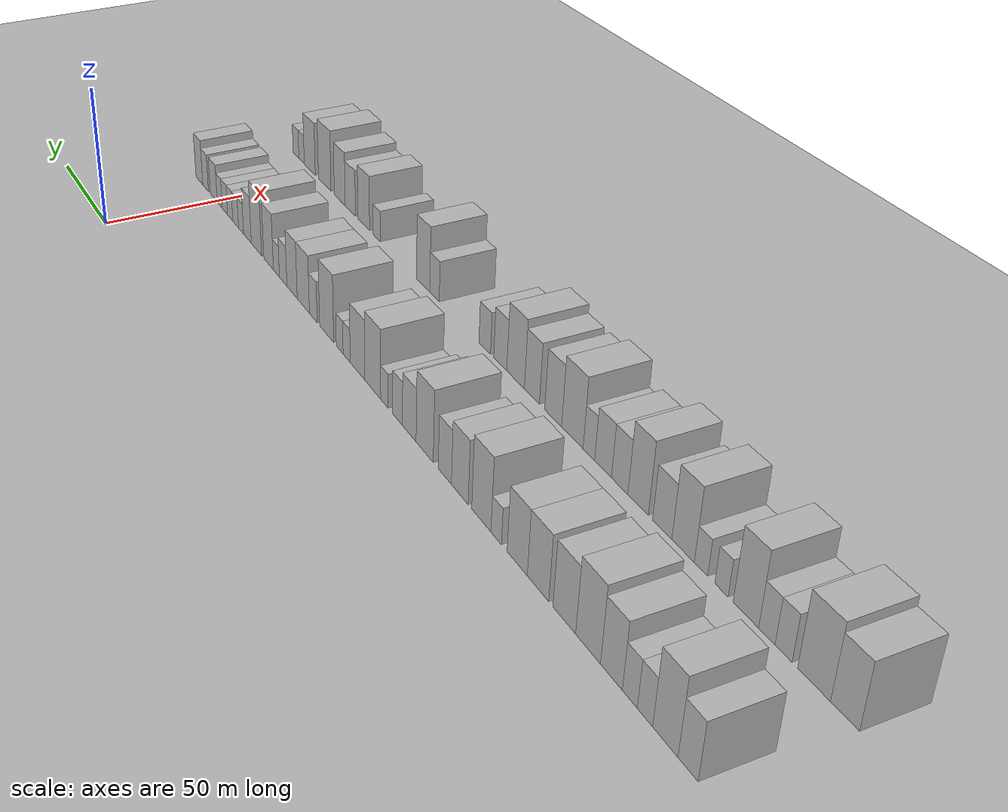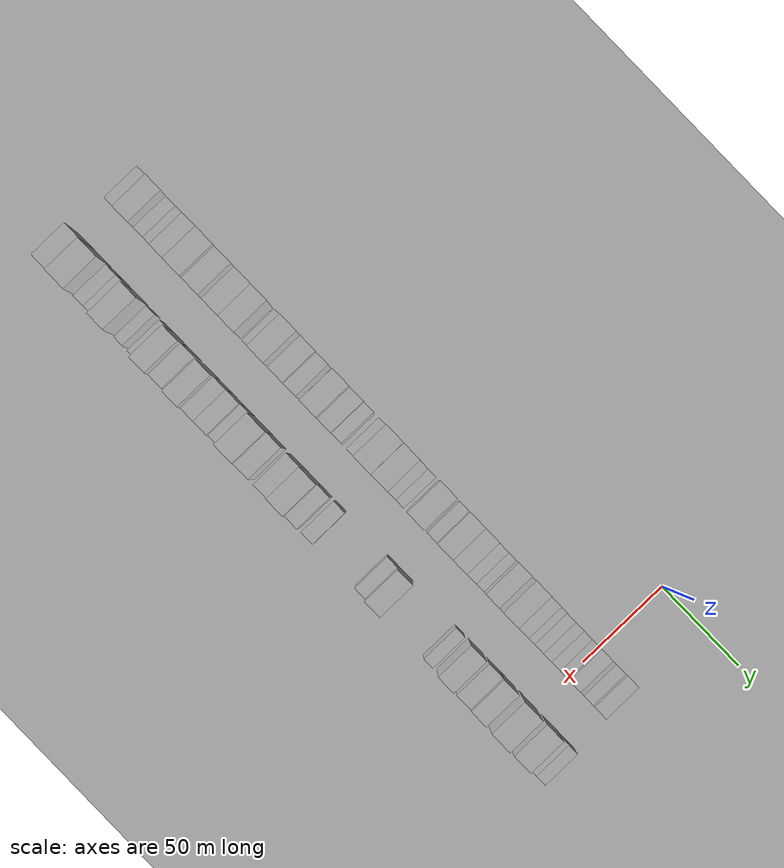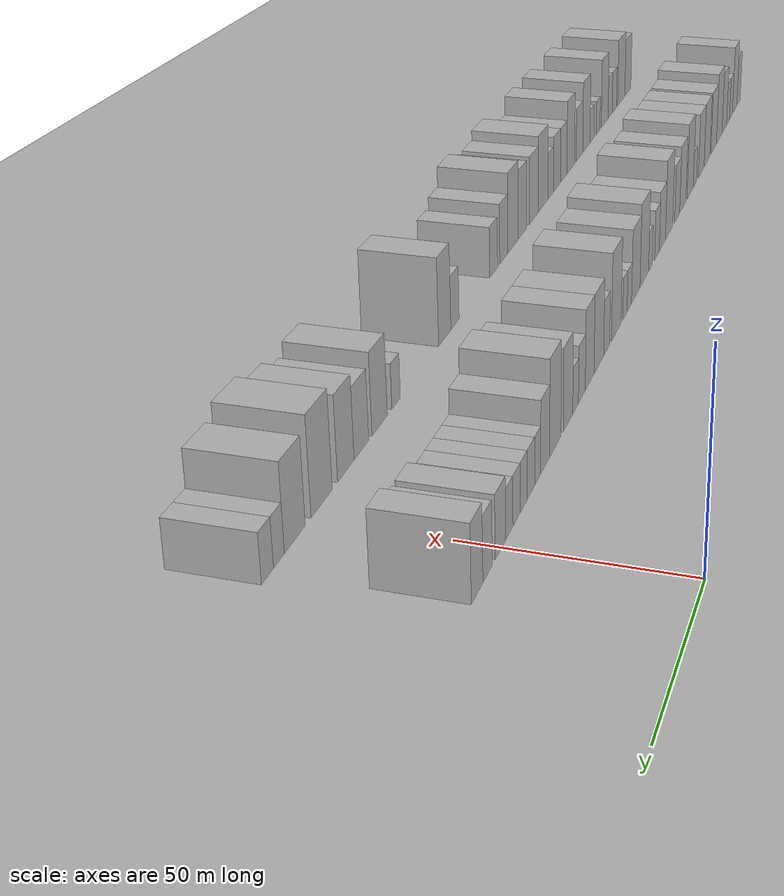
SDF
<sdf version="1.6">
 <world name="default">
  <include><name>ground_plane_1</name><uri>model://HANNAS_ground_plane</uri></include>
  <include>
   <name>ground_plane_2</name>
   <uri>model://HANNAS_ground_plane</uri>
   <pose>100 0 0  0 0 0</pose>
  </include>
  <model name="building_1">
   <static>1</static>
   <pose>50.0000 -293.2844 0 0.000000 0.000000 0.000000</pose>
   <link name="link">
    <pose>0 0 9.00 0 0 0</pose>
    <collision name="collision"><geometry><box><size>20.0000 7.4312 18.0000</size></box></geometry></collision>
    <visual name="visual">
     <cast_shadows>0</cast_shadows>
     <geometry><box><size>20.0000 7.4312 18.0000</size></box></geometry>
     <material>
      <script>
       <uri>model://HANNAS_wall/materials/scripts</uri>
       <uri>model://HANNAS_wall/materials/textures</uri>
       <name>vrc/HANNAS_wall</name>
      </script>
     </material>
    </visual>
   </link>
  </model>
  <model name="building_2">
   <static>1</static>
   <pose>50.0000 -284.7082 0 0.000000 0.000000 0.000000</pose>
   <link name="link">
    <pose>0 0 12.00 0 0 0</pose>
    <collision name="collision"><geometry><box><size>20.0000 9.7213 24.0000</size></box></geometry></collision>
    <visual name="visual">
     <cast_shadows>0</cast_shadows>
     <geometry><box><size>20.0000 9.7213 24.0000</size></box></geometry>
     <material>
      <script>
       <uri>model://HANNAS_wall/materials/scripts</uri>
       <uri>model://HANNAS_wall/materials/textures</uri>
       <name>vrc/HANNAS_wall</name>
      </script>
     </material>
    </visual>
   </link>
  </model>
  <model name="building_3">
   <static>1</static>
   <pose>50.0000 -276.7827 0 0.000000 0.000000 0.000000</pose>
   <link name="link">
    <pose>0 0 7.50 0 0 0</pose>
    <collision name="collision"><geometry><box><size>20.0000 6.1296 15.0000</size></box></geometry></collision>
    <visual name="visual">
     <cast_shadows>0</cast_shadows>
     <geometry><box><size>20.0000 6.1296 15.0000</size></box></geometry>
     <material>
      <script>
       <uri>model://HANNAS_wall/materials/scripts</uri>
       <uri>model://HANNAS_wall/materials/textures</uri>
       <name>vrc/HANNAS_wall</name>
      </script>
     </material>
    </visual>
   </link>
  </model>
  <model name="building_4">
   <static>1</static>
   <pose>50.0000 -270.6849 0 0.000000 0.000000 0.000000</pose>
   <link name="link">
    <pose>0 0 7.50 0 0 0</pose>
    <collision name="collision"><geometry><box><size>20.0000 6.0661 15.0000</size></box></geometry></collision>
    <visual name="visual">
     <cast_shadows>0</cast_shadows>
     <geometry><box><size>20.0000 6.0661 15.0000</size></box></geometry>
     <material>
      <script>
       <uri>model://HANNAS_wall/materials/scripts</uri>
       <uri>model://HANNAS_wall/materials/textures</uri>
       <name>vrc/HANNAS_wall</name>
      </script>
     </material>
    </visual>
   </link>
  </model>
  <model name="building_5">
   <static>1</static>
   <pose>50.0000 -263.0242 0 0.000000 0.000000 0.000000</pose>
   <link name="link">
    <pose>0 0 10.50 0 0 0</pose>
    <collision name="collision"><geometry><box><size>20.0000 9.2553 21.0000</size></box></geometry></collision>
    <visual name="visual">
     <cast_shadows>0</cast_shadows>
     <geometry><box><size>20.0000 9.2553 21.0000</size></box></geometry>
     <material>
      <script>
       <uri>model://HANNAS_wall/materials/scripts</uri>
       <uri>model://HANNAS_wall/materials/textures</uri>
       <name>vrc/HANNAS_wall</name>
      </script>
     </material>
    </visual>
   </link>
  </model>
  <model name="building_6">
   <static>1</static>
   <pose>50.0000 -252.9215 0 0.000000 0.000000 0.000000</pose>
   <link name="link">
    <pose>0 0 12.00 0 0 0</pose>
    <collision name="collision"><geometry><box><size>20.0000 10.9500 24.0000</size></box></geometry></collision>
    <visual name="visual">
     <cast_shadows>0</cast_shadows>
     <geometry><box><size>20.0000 10.9500 24.0000</size></box></geometry>
     <material>
      <script>
       <uri>model://HANNAS_wall/materials/scripts</uri>
       <uri>model://HANNAS_wall/materials/textures</uri>
       <name>vrc/HANNAS_wall</name>
      </script>
     </material>
    </visual>
   </link>
  </model>
  <model name="building_7">
   <static>1</static>
   <pose>50.0000 -242.2019 0 0.000000 0.000000 0.000000</pose>
   <link name="link">
    <pose>0 0 10.50 0 0 0</pose>
    <collision name="collision"><geometry><box><size>20.0000 10.4893 21.0000</size></box></geometry></collision>
    <visual name="visual">
     <cast_shadows>0</cast_shadows>
     <geometry><box><size>20.0000 10.4893 21.0000</size></box></geometry>
     <material>
      <script>
       <uri>model://HANNAS_wall/materials/scripts</uri>
       <uri>model://HANNAS_wall/materials/textures</uri>
       <name>vrc/HANNAS_wall</name>
      </script>
     </material>
    </visual>
   </link>
  </model>
  <model name="building_8">
   <static>1</static>
   <pose>50.0000 -229.7630 0 0.000000 0.000000 0.000000</pose>
   <link name="link">
    <pose>0 0 10.50 0 0 0</pose>
    <collision name="collision"><geometry><box><size>20.0000 10.3887 21.0000</size></box></geometry></collision>
    <visual name="visual">
     <cast_shadows>0</cast_shadows>
     <geometry><box><size>20.0000 10.3887 21.0000</size></box></geometry>
     <material>
      <script>
       <uri>model://HANNAS_wall/materials/scripts</uri>
       <uri>model://HANNAS_wall/materials/textures</uri>
       <name>vrc/HANNAS_wall</name>
      </script>
     </material>
    </visual>
   </link>
  </model>
  <model name="building_9">
   <static>1</static>
   <pose>50.0000 -219.4591 0 0.000000 0.000000 0.000000</pose>
   <link name="link">
    <pose>0 0 10.50 0 0 0</pose>
    <collision name="collision"><geometry><box><size>20.0000 10.2190 21.0000</size></box></geometry></collision>
    <visual name="visual">
     <cast_shadows>0</cast_shadows>
     <geometry><box><size>20.0000 10.2190 21.0000</size></box></geometry>
     <material>
      <script>
       <uri>model://HANNAS_wall/materials/scripts</uri>
       <uri>model://HANNAS_wall/materials/textures</uri>
       <name>vrc/HANNAS_wall</name>
      </script>
     </material>
    </visual>
   </link>
  </model>
  <model name="building_10">
   <static>1</static>
   <pose>50.0000 -208.5898 0 0.000000 0.000000 0.000000</pose>
   <link name="link">
    <pose>0 0 6.00 0 0 0</pose>
    <collision name="collision"><geometry><box><size>20.0000 5.5197 12.0000</size></box></geometry></collision>
    <visual name="visual">
     <cast_shadows>0</cast_shadows>
     <geometry><box><size>20.0000 5.5197 12.0000</size></box></geometry>
     <material>
      <script>
       <uri>model://HANNAS_wall/materials/scripts</uri>
       <uri>model://HANNAS_wall/materials/textures</uri>
       <name>vrc/HANNAS_wall</name>
      </script>
     </material>
    </visual>
   </link>
  </model>
  <model name="building_11">
   <static>1</static>
   <pose>50.0000 -200.6034 0 0.000000 0.000000 0.000000</pose>
   <link name="link">
    <pose>0 0 12.00 0 0 0</pose>
    <collision name="collision"><geometry><box><size>20.0000 10.4530 24.0000</size></box></geometry></collision>
    <visual name="visual">
     <cast_shadows>0</cast_shadows>
     <geometry><box><size>20.0000 10.4530 24.0000</size></box></geometry>
     <material>
      <script>
       <uri>model://HANNAS_wall/materials/scripts</uri>
       <uri>model://HANNAS_wall/materials/textures</uri>
       <name>vrc/HANNAS_wall</name>
      </script>
     </material>
    </visual>
   </link>
  </model>
  <model name="building_12">
   <static>1</static>
   <pose>50.0000 -188.6049 0 0.000000 0.000000 0.000000</pose>
   <link name="link">
    <pose>0 0 10.50 0 0 0</pose>
    <collision name="collision"><geometry><box><size>20.0000 9.5440 21.0000</size></box></geometry></collision>
    <visual name="visual">
     <cast_shadows>0</cast_shadows>
     <geometry><box><size>20.0000 9.5440 21.0000</size></box></geometry>
     <material>
      <script>
       <uri>model://HANNAS_wall/materials/scripts</uri>
       <uri>model://HANNAS_wall/materials/textures</uri>
       <name>vrc/HANNAS_wall</name>
      </script>
     </material>
    </visual>
   </link>
  </model>
  <model name="building_13">
   <static>1</static>
   <pose>50.0000 -179.9574 0 0.000000 0.000000 0.000000</pose>
   <link name="link">
    <pose>0 0 9.00 0 0 0</pose>
    <collision name="collision"><geometry><box><size>20.0000 7.7511 18.0000</size></box></geometry></collision>
    <visual name="visual">
     <cast_shadows>0</cast_shadows>
     <geometry><box><size>20.0000 7.7511 18.0000</size></box></geometry>
     <material>
      <script>
       <uri>model://HANNAS_wall/materials/scripts</uri>
       <uri>model://HANNAS_wall/materials/textures</uri>
       <name>vrc/HANNAS_wall</name>
      </script>
     </material>
    </visual>
   </link>
  </model>
  <model name="building_14">
   <static>1</static>
   <pose>50.0000 -167.8056 0 0.000000 0.000000 0.000000</pose>
   <link name="link">
    <pose>0 0 12.00 0 0 0</pose>
    <collision name="collision"><geometry><box><size>20.0000 10.5525 24.0000</size></box></geometry></collision>
    <visual name="visual">
     <cast_shadows>0</cast_shadows>
     <geometry><box><size>20.0000 10.5525 24.0000</size></box></geometry>
     <material>
      <script>
       <uri>model://HANNAS_wall/materials/scripts</uri>
       <uri>model://HANNAS_wall/materials/textures</uri>
       <name>vrc/HANNAS_wall</name>
      </script>
     </material>
    </visual>
   </link>
  </model>
  <model name="building_15">
   <static>1</static>
   <pose>50.0000 -158.1471 0 0.000000 0.000000 0.000000</pose>
   <link name="link">
    <pose>0 0 9.00 0 0 0</pose>
    <collision name="collision"><geometry><box><size>20.0000 8.7645 18.0000</size></box></geometry></collision>
    <visual name="visual">
     <cast_shadows>0</cast_shadows>
     <geometry><box><size>20.0000 8.7645 18.0000</size></box></geometry>
     <material>
      <script>
       <uri>model://HANNAS_wall/materials/scripts</uri>
       <uri>model://HANNAS_wall/materials/textures</uri>
       <name>vrc/HANNAS_wall</name>
      </script>
     </material>
    </visual>
   </link>
  </model>
  <model name="building_16">
   <static>1</static>
   <pose>50.0000 -150.6009 0 0.000000 0.000000 0.000000</pose>
   <link name="link">
    <pose>0 0 7.50 0 0 0</pose>
    <collision name="collision"><geometry><box><size>20.0000 6.3280 15.0000</size></box></geometry></collision>
    <visual name="visual">
     <cast_shadows>0</cast_shadows>
     <geometry><box><size>20.0000 6.3280 15.0000</size></box></geometry>
     <material>
      <script>
       <uri>model://HANNAS_wall/materials/scripts</uri>
       <uri>model://HANNAS_wall/materials/textures</uri>
       <name>vrc/HANNAS_wall</name>
      </script>
     </material>
    </visual>
   </link>
  </model>
  <model name="building_17">
   <static>1</static>
   <pose>50.0000 -141.9502 0 0.000000 0.000000 0.000000</pose>
   <link name="link">
    <pose>0 0 6.00 0 0 0</pose>
    <collision name="collision"><geometry><box><size>20.0000 4.9733 12.0000</size></box></geometry></collision>
    <visual name="visual">
     <cast_shadows>0</cast_shadows>
     <geometry><box><size>20.0000 4.9733 12.0000</size></box></geometry>
     <material>
      <script>
       <uri>model://HANNAS_wall/materials/scripts</uri>
       <uri>model://HANNAS_wall/materials/textures</uri>
       <name>vrc/HANNAS_wall</name>
      </script>
     </material>
    </visual>
   </link>
  </model>
  <model name="building_18">
   <static>1</static>
   <pose>50.0000 -133.9156 0 0.000000 0.000000 0.000000</pose>
   <link name="link">
    <pose>0 0 12.00 0 0 0</pose>
    <collision name="collision"><geometry><box><size>20.0000 11.0959 24.0000</size></box></geometry></collision>
    <visual name="visual">
     <cast_shadows>0</cast_shadows>
     <geometry><box><size>20.0000 11.0959 24.0000</size></box></geometry>
     <material>
      <script>
       <uri>model://HANNAS_wall/materials/scripts</uri>
       <uri>model://HANNAS_wall/materials/textures</uri>
       <name>vrc/HANNAS_wall</name>
      </script>
     </material>
    </visual>
   </link>
  </model>
  <model name="building_19">
   <static>1</static>
   <pose>50.0000 -123.1510 0 0.000000 0.000000 0.000000</pose>
   <link name="link">
    <pose>0 0 10.50 0 0 0</pose>
    <collision name="collision"><geometry><box><size>20.0000 10.4332 21.0000</size></box></geometry></collision>
    <visual name="visual">
     <cast_shadows>0</cast_shadows>
     <geometry><box><size>20.0000 10.4332 21.0000</size></box></geometry>
     <material>
      <script>
       <uri>model://HANNAS_wall/materials/scripts</uri>
       <uri>model://HANNAS_wall/materials/textures</uri>
       <name>vrc/HANNAS_wall</name>
      </script>
     </material>
    </visual>
   </link>
  </model>
  <model name="building_20">
   <static>1</static>
   <pose>50.0000 -115.3216 0 0.000000 0.000000 0.000000</pose>
   <link name="link">
    <pose>0 0 6.00 0 0 0</pose>
    <collision name="collision"><geometry><box><size>20.0000 5.2257 12.0000</size></box></geometry></collision>
    <visual name="visual">
     <cast_shadows>0</cast_shadows>
     <geometry><box><size>20.0000 5.2257 12.0000</size></box></geometry>
     <material>
      <script>
       <uri>model://HANNAS_wall/materials/scripts</uri>
       <uri>model://HANNAS_wall/materials/textures</uri>
       <name>vrc/HANNAS_wall</name>
      </script>
     </material>
    </visual>
   </link>
  </model>
  <model name="building_21">
   <static>1</static>
   <pose>50.0000 -110.1633 0 0.000000 0.000000 0.000000</pose>
   <link name="link">
    <pose>0 0 6.00 0 0 0</pose>
    <collision name="collision"><geometry><box><size>20.0000 5.0907 12.0000</size></box></geometry></collision>
    <visual name="visual">
     <cast_shadows>0</cast_shadows>
     <geometry><box><size>20.0000 5.0907 12.0000</size></box></geometry>
     <material>
      <script>
       <uri>model://HANNAS_wall/materials/scripts</uri>
       <uri>model://HANNAS_wall/materials/textures</uri>
       <name>vrc/HANNAS_wall</name>
      </script>
     </material>
    </visual>
   </link>
  </model>
  <model name="building_22">
   <static>1</static>
   <pose>50.0000 -100.2157 0 0.000000 0.000000 0.000000</pose>
   <link name="link">
    <pose>0 0 12.00 0 0 0</pose>
    <collision name="collision"><geometry><box><size>20.0000 10.8044 24.0000</size></box></geometry></collision>
    <visual name="visual">
     <cast_shadows>0</cast_shadows>
     <geometry><box><size>20.0000 10.8044 24.0000</size></box></geometry>
     <material>
      <script>
       <uri>model://HANNAS_wall/materials/scripts</uri>
       <uri>model://HANNAS_wall/materials/textures</uri>
       <name>vrc/HANNAS_wall</name>
      </script>
     </material>
    </visual>
   </link>
  </model>
  <model name="building_23">
   <static>1</static>
   <pose>50.0000 -89.7036 0 0.000000 0.000000 0.000000</pose>
   <link name="link">
    <pose>0 0 7.50 0 0 0</pose>
    <collision name="collision"><geometry><box><size>20.0000 6.2199 15.0000</size></box></geometry></collision>
    <visual name="visual">
     <cast_shadows>0</cast_shadows>
     <geometry><box><size>20.0000 6.2199 15.0000</size></box></geometry>
     <material>
      <script>
       <uri>model://HANNAS_wall/materials/scripts</uri>
       <uri>model://HANNAS_wall/materials/textures</uri>
       <name>vrc/HANNAS_wall</name>
      </script>
     </material>
    </visual>
   </link>
  </model>
  <model name="building_24">
   <static>1</static>
   <pose>50.0000 -81.5921 0 0.000000 0.000000 0.000000</pose>
   <link name="link">
    <pose>0 0 10.50 0 0 0</pose>
    <collision name="collision"><geometry><box><size>20.0000 10.0030 21.0000</size></box></geometry></collision>
    <visual name="visual">
     <cast_shadows>0</cast_shadows>
     <geometry><box><size>20.0000 10.0030 21.0000</size></box></geometry>
     <material>
      <script>
       <uri>model://HANNAS_wall/materials/scripts</uri>
       <uri>model://HANNAS_wall/materials/textures</uri>
       <name>vrc/HANNAS_wall</name>
      </script>
     </material>
    </visual>
   </link>
  </model>
  <model name="building_25">
   <static>1</static>
   <pose>50.0000 -72.2577 0 0.000000 0.000000 0.000000</pose>
   <link name="link">
    <pose>0 0 10.50 0 0 0</pose>
    <collision name="collision"><geometry><box><size>20.0000 8.6659 21.0000</size></box></geometry></collision>
    <visual name="visual">
     <cast_shadows>0</cast_shadows>
     <geometry><box><size>20.0000 8.6659 21.0000</size></box></geometry>
     <material>
      <script>
       <uri>model://HANNAS_wall/materials/scripts</uri>
       <uri>model://HANNAS_wall/materials/textures</uri>
       <name>vrc/HANNAS_wall</name>
      </script>
     </material>
    </visual>
   </link>
  </model>
  <model name="building_26">
   <static>1</static>
   <pose>50.0000 -64.6622 0 0.000000 0.000000 0.000000</pose>
   <link name="link">
    <pose>0 0 7.50 0 0 0</pose>
    <collision name="collision"><geometry><box><size>20.0000 6.5250 15.0000</size></box></geometry></collision>
    <visual name="visual">
     <cast_shadows>0</cast_shadows>
     <geometry><box><size>20.0000 6.5250 15.0000</size></box></geometry>
     <material>
      <script>
       <uri>model://HANNAS_wall/materials/scripts</uri>
       <uri>model://HANNAS_wall/materials/textures</uri>
       <name>vrc/HANNAS_wall</name>
      </script>
     </material>
    </visual>
   </link>
  </model>
  <model name="building_27">
   <static>1</static>
   <pose>50.0000 -58.7691 0 0.000000 0.000000 0.000000</pose>
   <link name="link">
    <pose>0 0 6.00 0 0 0</pose>
    <collision name="collision"><geometry><box><size>20.0000 5.2613 12.0000</size></box></geometry></collision>
    <visual name="visual">
     <cast_shadows>0</cast_shadows>
     <geometry><box><size>20.0000 5.2613 12.0000</size></box></geometry>
     <material>
      <script>
       <uri>model://HANNAS_wall/materials/scripts</uri>
       <uri>model://HANNAS_wall/materials/textures</uri>
       <name>vrc/HANNAS_wall</name>
      </script>
     </material>
    </visual>
   </link>
  </model>
  <model name="building_28">
   <static>1</static>
   <pose>50.0000 -51.8409 0 0.000000 0.000000 0.000000</pose>
   <link name="link">
    <pose>0 0 10.50 0 0 0</pose>
    <collision name="collision"><geometry><box><size>20.0000 8.5952 21.0000</size></box></geometry></collision>
    <visual name="visual">
     <cast_shadows>0</cast_shadows>
     <geometry><box><size>20.0000 8.5952 21.0000</size></box></geometry>
     <material>
      <script>
       <uri>model://HANNAS_wall/materials/scripts</uri>
       <uri>model://HANNAS_wall/materials/textures</uri>
       <name>vrc/HANNAS_wall</name>
      </script>
     </material>
    </visual>
   </link>
  </model>
  <model name="building_29">
   <static>1</static>
   <pose>50.0000 -40.7282 0 0.000000 0.000000 0.000000</pose>
   <link name="link">
    <pose>0 0 12.00 0 0 0</pose>
    <collision name="collision"><geometry><box><size>20.0000 9.6301 24.0000</size></box></geometry></collision>
    <visual name="visual">
     <cast_shadows>0</cast_shadows>
     <geometry><box><size>20.0000 9.6301 24.0000</size></box></geometry>
     <material>
      <script>
       <uri>model://HANNAS_wall/materials/scripts</uri>
       <uri>model://HANNAS_wall/materials/textures</uri>
       <name>vrc/HANNAS_wall</name>
      </script>
     </material>
    </visual>
   </link>
  </model>
  <model name="building_30">
   <static>1</static>
   <pose>50.0000 -32.2528 0 0.000000 0.000000 0.000000</pose>
   <link name="link">
    <pose>0 0 9.00 0 0 0</pose>
    <collision name="collision"><geometry><box><size>20.0000 7.3209 18.0000</size></box></geometry></collision>
    <visual name="visual">
     <cast_shadows>0</cast_shadows>
     <geometry><box><size>20.0000 7.3209 18.0000</size></box></geometry>
     <material>
      <script>
       <uri>model://HANNAS_wall/materials/scripts</uri>
       <uri>model://HANNAS_wall/materials/textures</uri>
       <name>vrc/HANNAS_wall</name>
      </script>
     </material>
    </visual>
   </link>
  </model>
  <model name="building_31">
   <static>1</static>
   <pose>50.0000 -26.1477 0 0.000000 0.000000 0.000000</pose>
   <link name="link">
    <pose>0 0 6.00 0 0 0</pose>
    <collision name="collision"><geometry><box><size>20.0000 4.8893 12.0000</size></box></geometry></collision>
    <visual name="visual">
     <cast_shadows>0</cast_shadows>
     <geometry><box><size>20.0000 4.8893 12.0000</size></box></geometry>
     <material>
      <script>
       <uri>model://HANNAS_wall/materials/scripts</uri>
       <uri>model://HANNAS_wall/materials/textures</uri>
       <name>vrc/HANNAS_wall</name>
      </script>
     </material>
    </visual>
   </link>
  </model>
  <model name="building_32">
   <static>1</static>
   <pose>50.0000 -20.8695 0 0.000000 0.000000 0.000000</pose>
   <link name="link">
    <pose>0 0 6.00 0 0 0</pose>
    <collision name="collision"><geometry><box><size>20.0000 5.6669 12.0000</size></box></geometry></collision>
    <visual name="visual">
     <cast_shadows>0</cast_shadows>
     <geometry><box><size>20.0000 5.6669 12.0000</size></box></geometry>
     <material>
      <script>
       <uri>model://HANNAS_wall/materials/scripts</uri>
       <uri>model://HANNAS_wall/materials/textures</uri>
       <name>vrc/HANNAS_wall</name>
      </script>
     </material>
    </visual>
   </link>
  </model>
  <model name="building_33">
   <static>1</static>
   <pose>50.0000 -15.4163 0 0.000000 0.000000 0.000000</pose>
   <link name="link">
    <pose>0 0 6.00 0 0 0</pose>
    <collision name="collision"><geometry><box><size>20.0000 5.2396 12.0000</size></box></geometry></collision>
    <visual name="visual">
     <cast_shadows>0</cast_shadows>
     <geometry><box><size>20.0000 5.2396 12.0000</size></box></geometry>
     <material>
      <script>
       <uri>model://HANNAS_wall/materials/scripts</uri>
       <uri>model://HANNAS_wall/materials/textures</uri>
       <name>vrc/HANNAS_wall</name>
      </script>
     </material>
    </visual>
   </link>
  </model>
  <model name="building_34">
   <static>1</static>
   <pose>50.0000 -10.0807 0 0.000000 0.000000 0.000000</pose>
   <link name="link">
    <pose>0 0 6.00 0 0 0</pose>
    <collision name="collision"><geometry><box><size>20.0000 5.4316 12.0000</size></box></geometry></collision>
    <visual name="visual">
     <cast_shadows>0</cast_shadows>
     <geometry><box><size>20.0000 5.4316 12.0000</size></box></geometry>
     <material>
      <script>
       <uri>model://HANNAS_wall/materials/scripts</uri>
       <uri>model://HANNAS_wall/materials/textures</uri>
       <name>vrc/HANNAS_wall</name>
      </script>
     </material>
    </visual>
   </link>
  </model>
  <model name="building_35">
   <static>1</static>
   <pose>50.0000 -4.8146 0 0.000000 0.000000 0.000000</pose>
   <link name="link">
    <pose>0 0 6.00 0 0 0</pose>
    <collision name="collision"><geometry><box><size>20.0000 5.1007 12.0000</size></box></geometry></collision>
    <visual name="visual">
     <cast_shadows>0</cast_shadows>
     <geometry><box><size>20.0000 5.1007 12.0000</size></box></geometry>
     <material>
      <script>
       <uri>model://HANNAS_wall/materials/scripts</uri>
       <uri>model://HANNAS_wall/materials/textures</uri>
       <name>vrc/HANNAS_wall</name>
      </script>
     </material>
    </visual>
   </link>
  </model>
  <model name="building_36">
   <static>1</static>
   <pose>50.0000 1.3412 0 0.000000 0.000000 0.000000</pose>
   <link name="link">
    <pose>0 0 7.50 0 0 0</pose>
    <collision name="collision"><geometry><box><size>20.0000 7.2109 15.0000</size></box></geometry></collision>
    <visual name="visual">
     <cast_shadows>0</cast_shadows>
     <geometry><box><size>20.0000 7.2109 15.0000</size></box></geometry>
     <material>
      <script>
       <uri>model://HANNAS_wall/materials/scripts</uri>
       <uri>model://HANNAS_wall/materials/textures</uri>
       <name>vrc/HANNAS_wall</name>
      </script>
     </material>
    </visual>
   </link>
  </model>
  <model name="building_37">
   <static>1</static>
   <pose>50.0000 9.9904 0 0.000000 0.000000 0.000000</pose>
   <link name="link">
    <pose>0 0 7.50 0 0 0</pose>
    <collision name="collision"><geometry><box><size>20.0000 6.0876 15.0000</size></box></geometry></collision>
    <visual name="visual">
     <cast_shadows>0</cast_shadows>
     <geometry><box><size>20.0000 6.0876 15.0000</size></box></geometry>
     <material>
      <script>
       <uri>model://HANNAS_wall/materials/scripts</uri>
       <uri>model://HANNAS_wall/materials/textures</uri>
       <name>vrc/HANNAS_wall</name>
      </script>
     </material>
    </visual>
   </link>
  </model>
  <model name="building_38">
   <static>1</static>
   <pose>50.0000 16.7120 0 0.000000 0.000000 0.000000</pose>
   <link name="link">
    <pose>0 0 9.00 0 0 0</pose>
    <collision name="collision"><geometry><box><size>20.0000 7.3554 18.0000</size></box></geometry></collision>
    <visual name="visual">
     <cast_shadows>0</cast_shadows>
     <geometry><box><size>20.0000 7.3554 18.0000</size></box></geometry>
     <material>
      <script>
       <uri>model://HANNAS_wall/materials/scripts</uri>
       <uri>model://HANNAS_wall/materials/textures</uri>
       <name>vrc/HANNAS_wall</name>
      </script>
     </material>
    </visual>
   </link>
  </model>
  <model name="building_73">
   <static>1</static>
   <pose>90.0000 -295.0864 0 0.000000 0.000000 0.000000</pose>
   <link name="link">
    <pose>0 0 10.50 0 0 0</pose>
    <collision name="collision"><geometry><box><size>20.0000 9.8273 21.0000</size></box></geometry></collision>
    <visual name="visual">
     <cast_shadows>0</cast_shadows>
     <geometry><box><size>20.0000 9.8273 21.0000</size></box></geometry>
     <material>
      <script>
       <uri>model://HANNAS_wall/materials/scripts</uri>
       <uri>model://HANNAS_wall/materials/textures</uri>
       <name>vrc/HANNAS_wall</name>
      </script>
     </material>
    </visual>
   </link>
  </model>
  <model name="building_74">
   <static>1</static>
   <pose>90.0000 -284.3404 0 0.000000 0.000000 0.000000</pose>
   <link name="link">
    <pose>0 0 12.00 0 0 0</pose>
    <collision name="collision"><geometry><box><size>20.0000 11.6646 24.0000</size></box></geometry></collision>
    <visual name="visual">
     <cast_shadows>0</cast_shadows>
     <geometry><box><size>20.0000 11.6646 24.0000</size></box></geometry>
     <material>
      <script>
       <uri>model://HANNAS_wall/materials/scripts</uri>
       <uri>model://HANNAS_wall/materials/textures</uri>
       <name>vrc/HANNAS_wall</name>
      </script>
     </material>
    </visual>
   </link>
  </model>
  <model name="building_75">
   <static>1</static>
   <pose>90.0000 -273.3361 0 0.000000 0.000000 0.000000</pose>
   <link name="link">
    <pose>0 0 7.50 0 0 0</pose>
    <collision name="collision"><geometry><box><size>20.0000 6.3440 15.0000</size></box></geometry></collision>
    <visual name="visual">
     <cast_shadows>0</cast_shadows>
     <geometry><box><size>20.0000 6.3440 15.0000</size></box></geometry>
     <material>
      <script>
       <uri>model://HANNAS_wall/materials/scripts</uri>
       <uri>model://HANNAS_wall/materials/textures</uri>
       <name>vrc/HANNAS_wall</name>
      </script>
     </material>
    </visual>
   </link>
  </model>
  <model name="building_76">
   <static>1</static>
   <pose>90.0000 -267.0287 0 0.000000 0.000000 0.000000</pose>
   <link name="link">
    <pose>0 0 7.50 0 0 0</pose>
    <collision name="collision"><geometry><box><size>20.0000 6.2708 15.0000</size></box></geometry></collision>
    <visual name="visual">
     <cast_shadows>0</cast_shadows>
     <geometry><box><size>20.0000 6.2708 15.0000</size></box></geometry>
     <material>
      <script>
       <uri>model://HANNAS_wall/materials/scripts</uri>
       <uri>model://HANNAS_wall/materials/textures</uri>
       <name>vrc/HANNAS_wall</name>
      </script>
     </material>
    </visual>
   </link>
  </model>
  <model name="building_77">
   <static>1</static>
   <pose>90.0000 -258.8659 0 0.000000 0.000000 0.000000</pose>
   <link name="link">
    <pose>0 0 12.00 0 0 0</pose>
    <collision name="collision"><geometry><box><size>20.0000 10.0548 24.0000</size></box></geometry></collision>
    <visual name="visual">
     <cast_shadows>0</cast_shadows>
     <geometry><box><size>20.0000 10.0548 24.0000</size></box></geometry>
     <material>
      <script>
       <uri>model://HANNAS_wall/materials/scripts</uri>
       <uri>model://HANNAS_wall/materials/textures</uri>
       <name>vrc/HANNAS_wall</name>
      </script>
     </material>
    </visual>
   </link>
  </model>
  <model name="building_78">
   <static>1</static>
   <pose>90.0000 -249.1007 0 0.000000 0.000000 0.000000</pose>
   <link name="link">
    <pose>0 0 6.00 0 0 0</pose>
    <collision name="collision"><geometry><box><size>20.0000 5.4756 12.0000</size></box></geometry></collision>
    <visual name="visual">
     <cast_shadows>0</cast_shadows>
     <geometry><box><size>20.0000 5.4756 12.0000</size></box></geometry>
     <material>
      <script>
       <uri>model://HANNAS_wall/materials/scripts</uri>
       <uri>model://HANNAS_wall/materials/textures</uri>
       <name>vrc/HANNAS_wall</name>
      </script>
     </material>
    </visual>
   </link>
  </model>
  <model name="building_79">
   <static>1</static>
   <pose>90.0000 -240.5228 0 0.000000 0.000000 0.000000</pose>
   <link name="link">
    <pose>0 0 6.00 0 0 0</pose>
    <collision name="collision"><geometry><box><size>20.0000 5.6804 12.0000</size></box></geometry></collision>
    <visual name="visual">
     <cast_shadows>0</cast_shadows>
     <geometry><box><size>20.0000 5.6804 12.0000</size></box></geometry>
     <material>
      <script>
       <uri>model://HANNAS_wall/materials/scripts</uri>
       <uri>model://HANNAS_wall/materials/textures</uri>
       <name>vrc/HANNAS_wall</name>
      </script>
     </material>
    </visual>
   </link>
  </model>
  <model name="building_80">
   <static>1</static>
   <pose>90.0000 -232.7603 0 0.000000 0.000000 0.000000</pose>
   <link name="link">
    <pose>0 0 12.00 0 0 0</pose>
    <collision name="collision"><geometry><box><size>20.0000 9.8446 24.0000</size></box></geometry></collision>
    <visual name="visual">
     <cast_shadows>0</cast_shadows>
     <geometry><box><size>20.0000 9.8446 24.0000</size></box></geometry>
     <material>
      <script>
       <uri>model://HANNAS_wall/materials/scripts</uri>
       <uri>model://HANNAS_wall/materials/textures</uri>
       <name>vrc/HANNAS_wall</name>
      </script>
     </material>
    </visual>
   </link>
  </model>
  <model name="building_81">
   <static>1</static>
   <pose>90.0000 -223.4600 0 0.000000 0.000000 0.000000</pose>
   <link name="link">
    <pose>0 0 9.00 0 0 0</pose>
    <collision name="collision"><geometry><box><size>20.0000 8.7558 18.0000</size></box></geometry></collision>
    <visual name="visual">
     <cast_shadows>0</cast_shadows>
     <geometry><box><size>20.0000 8.7558 18.0000</size></box></geometry>
     <material>
      <script>
       <uri>model://HANNAS_wall/materials/scripts</uri>
       <uri>model://HANNAS_wall/materials/textures</uri>
       <name>vrc/HANNAS_wall</name>
      </script>
     </material>
    </visual>
   </link>
  </model>
  <model name="building_82">
   <static>1</static>
   <pose>90.0000 -212.2357 0 0.000000 0.000000 0.000000</pose>
   <link name="link">
    <pose>0 0 12.00 0 0 0</pose>
    <collision name="collision"><geometry><box><size>20.0000 9.6929 24.0000</size></box></geometry></collision>
    <visual name="visual">
     <cast_shadows>0</cast_shadows>
     <geometry><box><size>20.0000 9.6929 24.0000</size></box></geometry>
     <material>
      <script>
       <uri>model://HANNAS_wall/materials/scripts</uri>
       <uri>model://HANNAS_wall/materials/textures</uri>
       <name>vrc/HANNAS_wall</name>
      </script>
     </material>
    </visual>
   </link>
  </model>
  <model name="building_83">
   <static>1</static>
   <pose>90.0000 -203.3787 0 0.000000 0.000000 0.000000</pose>
   <link name="link">
    <pose>0 0 9.00 0 0 0</pose>
    <collision name="collision"><geometry><box><size>20.0000 8.0211 18.0000</size></box></geometry></collision>
    <visual name="visual">
     <cast_shadows>0</cast_shadows>
     <geometry><box><size>20.0000 8.0211 18.0000</size></box></geometry>
     <material>
      <script>
       <uri>model://HANNAS_wall/materials/scripts</uri>
       <uri>model://HANNAS_wall/materials/textures</uri>
       <name>vrc/HANNAS_wall</name>
      </script>
     </material>
    </visual>
   </link>
  </model>
  <model name="building_84">
   <static>1</static>
   <pose>90.0000 -195.1259 0 0.000000 0.000000 0.000000</pose>
   <link name="link">
    <pose>0 0 9.00 0 0 0</pose>
    <collision name="collision"><geometry><box><size>20.0000 8.4846 18.0000</size></box></geometry></collision>
    <visual name="visual">
     <cast_shadows>0</cast_shadows>
     <geometry><box><size>20.0000 8.4846 18.0000</size></box></geometry>
     <material>
      <script>
       <uri>model://HANNAS_wall/materials/scripts</uri>
       <uri>model://HANNAS_wall/materials/textures</uri>
       <name>vrc/HANNAS_wall</name>
      </script>
     </material>
    </visual>
   </link>
  </model>
  <model name="building_85">
   <static>1</static>
   <pose>90.0000 -187.8772 0 0.000000 0.000000 0.000000</pose>
   <link name="link">
    <pose>0 0 7.50 0 0 0</pose>
    <collision name="collision"><geometry><box><size>20.0000 6.0127 15.0000</size></box></geometry></collision>
    <visual name="visual">
     <cast_shadows>0</cast_shadows>
     <geometry><box><size>20.0000 6.0127 15.0000</size></box></geometry>
     <material>
      <script>
       <uri>model://HANNAS_wall/materials/scripts</uri>
       <uri>model://HANNAS_wall/materials/textures</uri>
       <name>vrc/HANNAS_wall</name>
      </script>
     </material>
    </visual>
   </link>
  </model>
  <model name="building_86">
   <static>1</static>
   <pose>90.0000 -179.0944 0 0.000000 0.000000 0.000000</pose>
   <link name="link">
    <pose>0 0 12.00 0 0 0</pose>
    <collision name="collision"><geometry><box><size>20.0000 11.5529 24.0000</size></box></geometry></collision>
    <visual name="visual">
     <cast_shadows>0</cast_shadows>
     <geometry><box><size>20.0000 11.5529 24.0000</size></box></geometry>
     <material>
      <script>
       <uri>model://HANNAS_wall/materials/scripts</uri>
       <uri>model://HANNAS_wall/materials/textures</uri>
       <name>vrc/HANNAS_wall</name>
      </script>
     </material>
    </visual>
   </link>
  </model>
  <model name="building_87">
   <static>1</static>
   <pose>90.0000 -168.6159 0 0.000000 0.000000 0.000000</pose>
   <link name="link">
    <pose>0 0 10.50 0 0 0</pose>
    <collision name="collision"><geometry><box><size>20.0000 9.4040 21.0000</size></box></geometry></collision>
    <visual name="visual">
     <cast_shadows>0</cast_shadows>
     <geometry><box><size>20.0000 9.4040 21.0000</size></box></geometry>
     <material>
      <script>
       <uri>model://HANNAS_wall/materials/scripts</uri>
       <uri>model://HANNAS_wall/materials/textures</uri>
       <name>vrc/HANNAS_wall</name>
      </script>
     </material>
    </visual>
   </link>
  </model>
  <model name="building_88">
   <static>1</static>
   <pose>90.0000 -156.5724 0 0.000000 0.000000 0.000000</pose>
   <link name="link">
    <pose>0 0 10.50 0 0 0</pose>
    <collision name="collision"><geometry><box><size>20.0000 8.6831 21.0000</size></box></geometry></collision>
    <visual name="visual">
     <cast_shadows>0</cast_shadows>
     <geometry><box><size>20.0000 8.6831 21.0000</size></box></geometry>
     <material>
      <script>
       <uri>model://HANNAS_wall/materials/scripts</uri>
       <uri>model://HANNAS_wall/materials/textures</uri>
       <name>vrc/HANNAS_wall</name>
      </script>
     </material>
    </visual>
   </link>
  </model>
  <model name="building_89">
   <static>1</static>
   <pose>90.0000 -146.9430 0 0.000000 0.000000 0.000000</pose>
   <link name="link">
    <pose>0 0 12.00 0 0 0</pose>
    <collision name="collision"><geometry><box><size>20.0000 10.5758 24.0000</size></box></geometry></collision>
    <visual name="visual">
     <cast_shadows>0</cast_shadows>
     <geometry><box><size>20.0000 10.5758 24.0000</size></box></geometry>
     <material>
      <script>
       <uri>model://HANNAS_wall/materials/scripts</uri>
       <uri>model://HANNAS_wall/materials/textures</uri>
       <name>vrc/HANNAS_wall</name>
      </script>
     </material>
    </visual>
   </link>
  </model>
  <model name="building_90">
   <static>1</static>
   <pose>90.0000 -137.6333 0 0.000000 0.000000 0.000000</pose>
   <link name="link">
    <pose>0 0 9.00 0 0 0</pose>
    <collision name="collision"><geometry><box><size>20.0000 8.0435 18.0000</size></box></geometry></collision>
    <visual name="visual">
     <cast_shadows>0</cast_shadows>
     <geometry><box><size>20.0000 8.0435 18.0000</size></box></geometry>
     <material>
      <script>
       <uri>model://HANNAS_wall/materials/scripts</uri>
       <uri>model://HANNAS_wall/materials/textures</uri>
       <name>vrc/HANNAS_wall</name>
      </script>
     </material>
    </visual>
   </link>
  </model>
  <model name="building_91">
   <static>1</static>
   <pose>90.0000 -127.9042 0 0.000000 0.000000 0.000000</pose>
   <link name="link">
    <pose>0 0 7.50 0 0 0</pose>
    <collision name="collision"><geometry><box><size>20.0000 7.4146 15.0000</size></box></geometry></collision>
    <visual name="visual">
     <cast_shadows>0</cast_shadows>
     <geometry><box><size>20.0000 7.4146 15.0000</size></box></geometry>
     <material>
      <script>
       <uri>model://HANNAS_wall/materials/scripts</uri>
       <uri>model://HANNAS_wall/materials/textures</uri>
       <name>vrc/HANNAS_wall</name>
      </script>
     </material>
    </visual>
   </link>
  </model>
  <model name="building_92">
   <static>1</static>
   <pose>90.0000 -94.0965 0 0.000000 0.000000 0.000000</pose>
   <link name="link">
    <pose>0 0 7.50 0 0 0</pose>
    <collision name="collision"><geometry><box><size>20.0000 6.7336 15.0000</size></box></geometry></collision>
    <visual name="visual">
     <cast_shadows>0</cast_shadows>
     <geometry><box><size>20.0000 6.7336 15.0000</size></box></geometry>
     <material>
      <script>
       <uri>model://HANNAS_wall/materials/scripts</uri>
       <uri>model://HANNAS_wall/materials/textures</uri>
       <name>vrc/HANNAS_wall</name>
      </script>
     </material>
    </visual>
   </link>
  </model>
  <model name="building_93">
   <static>1</static>
   <pose>90.0000 -85.8744 0 0.000000 0.000000 0.000000</pose>
   <link name="link">
    <pose>0 0 12.00 0 0 0</pose>
    <collision name="collision"><geometry><box><size>20.0000 9.7105 24.0000</size></box></geometry></collision>
    <visual name="visual">
     <cast_shadows>0</cast_shadows>
     <geometry><box><size>20.0000 9.7105 24.0000</size></box></geometry>
     <material>
      <script>
       <uri>model://HANNAS_wall/materials/scripts</uri>
       <uri>model://HANNAS_wall/materials/textures</uri>
       <name>vrc/HANNAS_wall</name>
      </script>
     </material>
    </visual>
   </link>
  </model>
  <model name="building_94">
   <static>1</static>
   <pose>90.0000 -50.3416 0 0.000000 0.000000 0.000000</pose>
   <link name="link">
    <pose>0 0 6.00 0 0 0</pose>
    <collision name="collision"><geometry><box><size>20.0000 5.7851 12.0000</size></box></geometry></collision>
    <visual name="visual">
     <cast_shadows>0</cast_shadows>
     <geometry><box><size>20.0000 5.7851 12.0000</size></box></geometry>
     <material>
      <script>
       <uri>model://HANNAS_wall/materials/scripts</uri>
       <uri>model://HANNAS_wall/materials/textures</uri>
       <name>vrc/HANNAS_wall</name>
      </script>
     </material>
    </visual>
   </link>
  </model>
  <model name="building_95">
   <static>1</static>
   <pose>90.0000 -39.5558 0 0.000000 0.000000 0.000000</pose>
   <link name="link">
    <pose>0 0 10.50 0 0 0</pose>
    <collision name="collision"><geometry><box><size>20.0000 9.7865 21.0000</size></box></geometry></collision>
    <visual name="visual">
     <cast_shadows>0</cast_shadows>
     <geometry><box><size>20.0000 9.7865 21.0000</size></box></geometry>
     <material>
      <script>
       <uri>model://HANNAS_wall/materials/scripts</uri>
       <uri>model://HANNAS_wall/materials/textures</uri>
       <name>vrc/HANNAS_wall</name>
      </script>
     </material>
    </visual>
   </link>
  </model>
  <model name="building_96">
   <static>1</static>
   <pose>90.0000 -28.2373 0 0.000000 0.000000 0.000000</pose>
   <link name="link">
    <pose>0 0 9.00 0 0 0</pose>
    <collision name="collision"><geometry><box><size>20.0000 8.8505 18.0000</size></box></geometry></collision>
    <visual name="visual">
     <cast_shadows>0</cast_shadows>
     <geometry><box><size>20.0000 8.8505 18.0000</size></box></geometry>
     <material>
      <script>
       <uri>model://HANNAS_wall/materials/scripts</uri>
       <uri>model://HANNAS_wall/materials/textures</uri>
       <name>vrc/HANNAS_wall</name>
      </script>
     </material>
    </visual>
   </link>
  </model>
  <model name="building_97">
   <static>1</static>
   <pose>90.0000 -19.0265 0 0.000000 0.000000 0.000000</pose>
   <link name="link">
    <pose>0 0 10.50 0 0 0</pose>
    <collision name="collision"><geometry><box><size>20.0000 9.5711 21.0000</size></box></geometry></collision>
    <visual name="visual">
     <cast_shadows>0</cast_shadows>
     <geometry><box><size>20.0000 9.5711 21.0000</size></box></geometry>
     <material>
      <script>
       <uri>model://HANNAS_wall/materials/scripts</uri>
       <uri>model://HANNAS_wall/materials/textures</uri>
       <name>vrc/HANNAS_wall</name>
      </script>
     </material>
    </visual>
   </link>
  </model>
  <model name="building_98">
   <static>1</static>
   <pose>90.0000 -5.5039 0 0.000000 0.000000 0.000000</pose>
   <link name="link">
    <pose>0 0 12.00 0 0 0</pose>
    <collision name="collision"><geometry><box><size>20.0000 11.4741 24.0000</size></box></geometry></collision>
    <visual name="visual">
     <cast_shadows>0</cast_shadows>
     <geometry><box><size>20.0000 11.4741 24.0000</size></box></geometry>
     <material>
      <script>
       <uri>model://HANNAS_wall/materials/scripts</uri>
       <uri>model://HANNAS_wall/materials/textures</uri>
       <name>vrc/HANNAS_wall</name>
      </script>
     </material>
    </visual>
   </link>
  </model>
  <model name="building_99">
   <static>1</static>
   <pose>90.0000 8.4702 0 0.000000 0.000000 0.000000</pose>
   <link name="link">
    <pose>0 0 10.50 0 0 0</pose>
    <collision name="collision"><geometry><box><size>20.0000 10.4740 21.0000</size></box></geometry></collision>
    <visual name="visual">
     <cast_shadows>0</cast_shadows>
     <geometry><box><size>20.0000 10.4740 21.0000</size></box></geometry>
     <material>
      <script>
       <uri>model://HANNAS_wall/materials/scripts</uri>
       <uri>model://HANNAS_wall/materials/textures</uri>
       <name>vrc/HANNAS_wall</name>
      </script>
     </material>
    </visual>
   </link>
  </model>
  <model name="building_100">
   <static>1</static>
   <pose>90.0000 16.3250 0 0.000000 0.000000 0.000000</pose>
   <link name="link">
    <pose>0 0 6.00 0 0 0</pose>
    <collision name="collision"><geometry><box><size>20.0000 5.2357 12.0000</size></box></geometry></collision>
    <visual name="visual">
     <cast_shadows>0</cast_shadows>
     <geometry><box><size>20.0000 5.2357 12.0000</size></box></geometry>
     <material>
      <script>
       <uri>model://HANNAS_wall/materials/scripts</uri>
       <uri>model://HANNAS_wall/materials/textures</uri>
       <name>vrc/HANNAS_wall</name>
      </script>
     </material>
    </visual>
   </link>
  </model>
  <model name="building_101">
   <static>1</static>
   <pose>90.0000 21.7895 0 0.000000 0.000000 0.000000</pose>
   <link name="link">
    <pose>0 0 6.00 0 0 0</pose>
    <collision name="collision"><geometry><box><size>20.0000 5.6932 12.0000</size></box></geometry></collision>
    <visual name="visual">
     <cast_shadows>0</cast_shadows>
     <geometry><box><size>20.0000 5.6932 12.0000</size></box></geometry>
     <material>
      <script>
       <uri>model://HANNAS_wall/materials/scripts</uri>
       <uri>model://HANNAS_wall/materials/textures</uri>
       <name>vrc/HANNAS_wall</name>
      </script>
     </material>
    </visual>
   </link>
  </model>
 </world>
</sdf>
